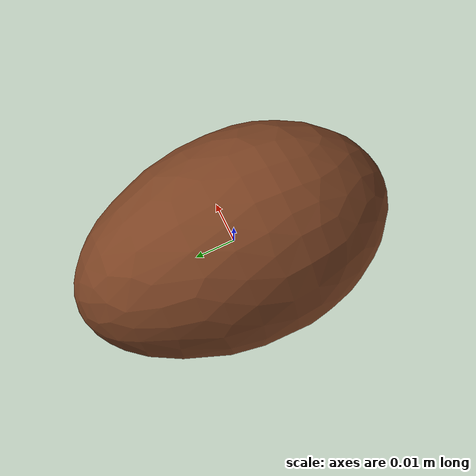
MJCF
<mujoco model="Egg_12">
  <compiler autolimits="true" boundmass="0.01" angle="radian"/>
  <default>
    <default class="/">
      <default class="__VISUAL_MJT__">
        <geom contype="0" conaffinity="0" group="0"/>
      </default>
      <default class="__STRUCTURAL_MJT__">
        <geom contype="8" conaffinity="15" group="4" friction="0.90000000000000002 0.90000000000000002 0.001" solref="0.025000000000000001 1" solimp="0.998 0.998 0.001"/>
      </default>
      <default class="__DYNAMIC_MJT__">
        <geom contype="1" conaffinity="15" group="4" friction="0.90000000000000002 0.90000000000000002 0.001" solref="0.025000000000000001 1" solimp="0.998 0.998 0.001"/>
      </default>
    </default>
  </default>
  <asset>
    <material name="material_Egg6_Mat" class="/" specular="0.5" shininess="0.5" rgba="0.48529410000000001 0.26198510000000003 0.13916519999999999 1"/>
    <mesh name="Egg_12_egg_12" class="/" file="Egg_12_egg_12/Egg_12_egg_12.obj" scale="1 1 1"/>
  </asset>
  <worldbody>
    <body name="Egg_12">
      <joint name="Egg_12_free" class="/" type="free" pos="0 0 0" axis="0 0 1" stiffness="0" range="0 0" armature="0" damping="0.10000000000000001" frictionloss="0"/>
      <body name="Egg_12_egg_12" pos="-0.00014999999999999999 0 -0.0001" quat="1 0 0 0">
        <geom name="Egg_12_egg_12" class="__VISUAL_MJT__" type="mesh" material="material_Egg6_Mat" shellinertia="true" mesh="Egg_12_egg_12"/>
        <geom name="Egg_12_PrimitiveCollider_0" class="__DYNAMIC_MJT__" type="capsule" size="0.02405165508389473 0.012084495276212692" rgba="0 1 0 1" pos="-0 0 0" quat="0.70710678118654757 0.70710678118654746 0 0"/>
      </body>
    </body>
  </worldbody>
</mujoco>
